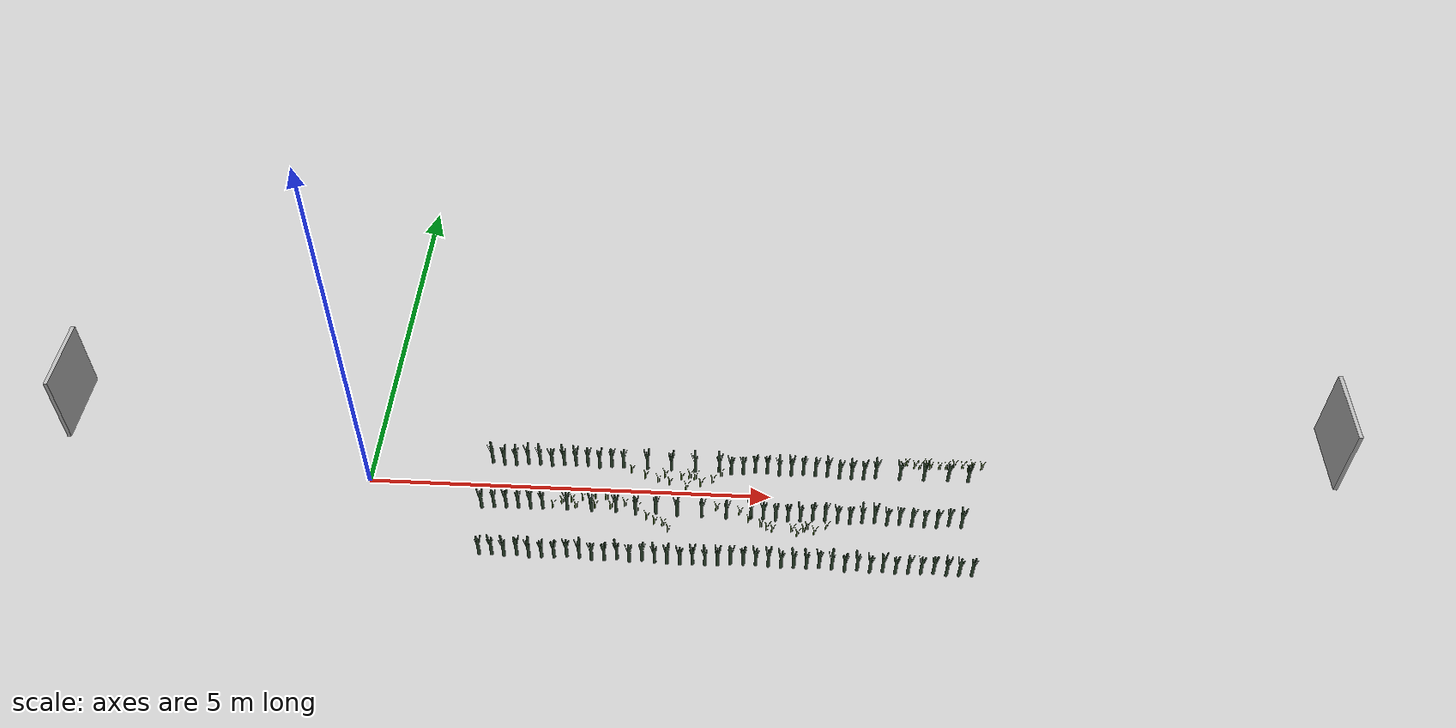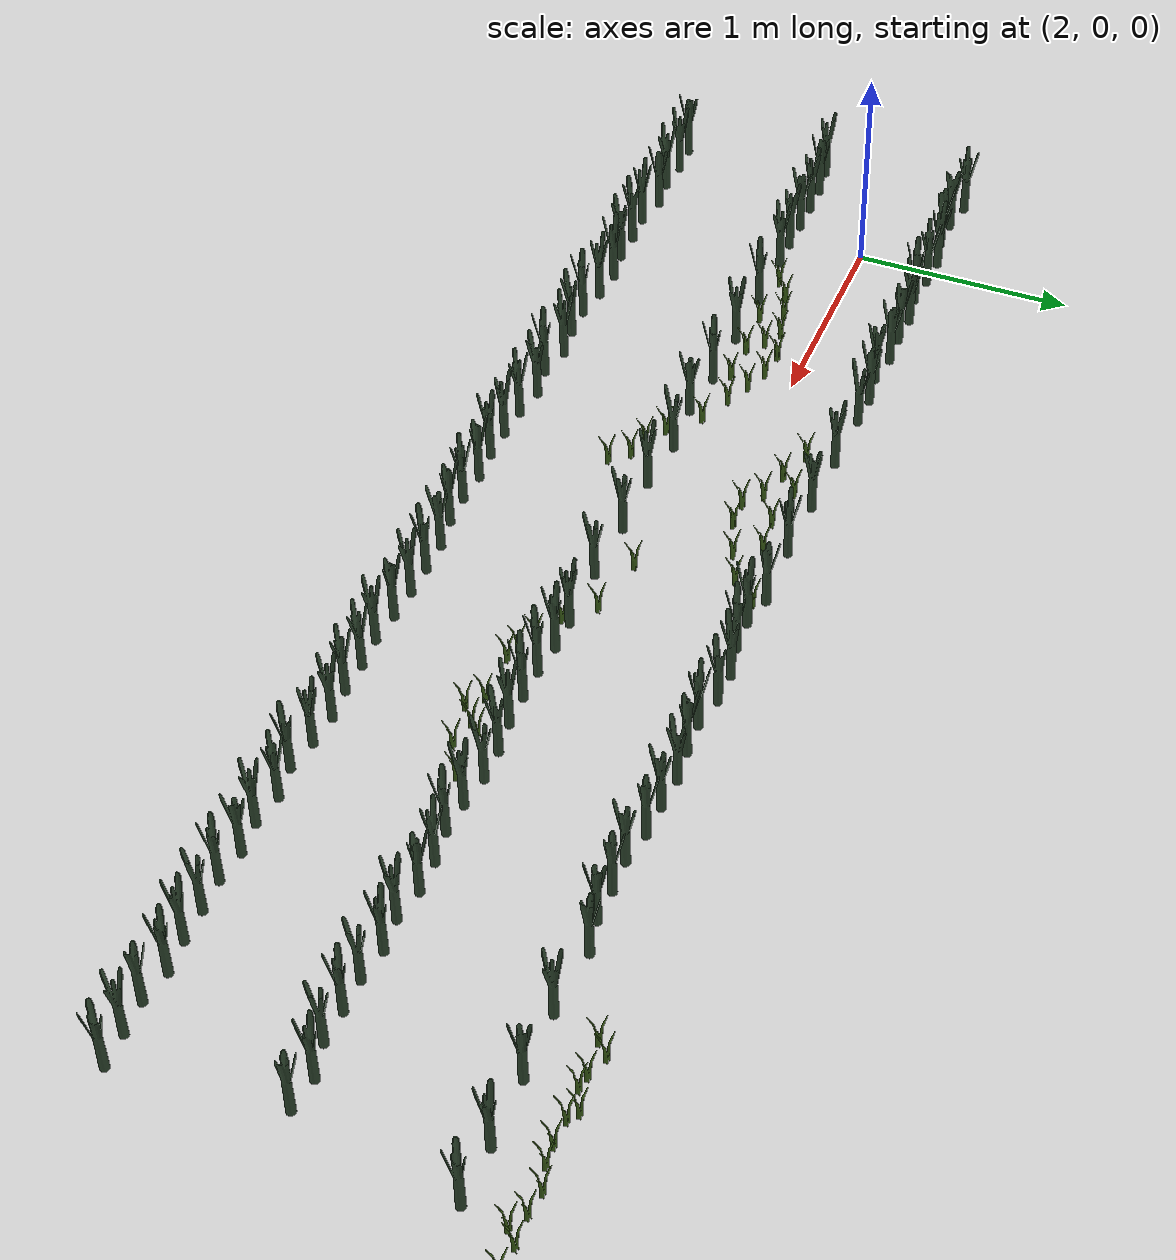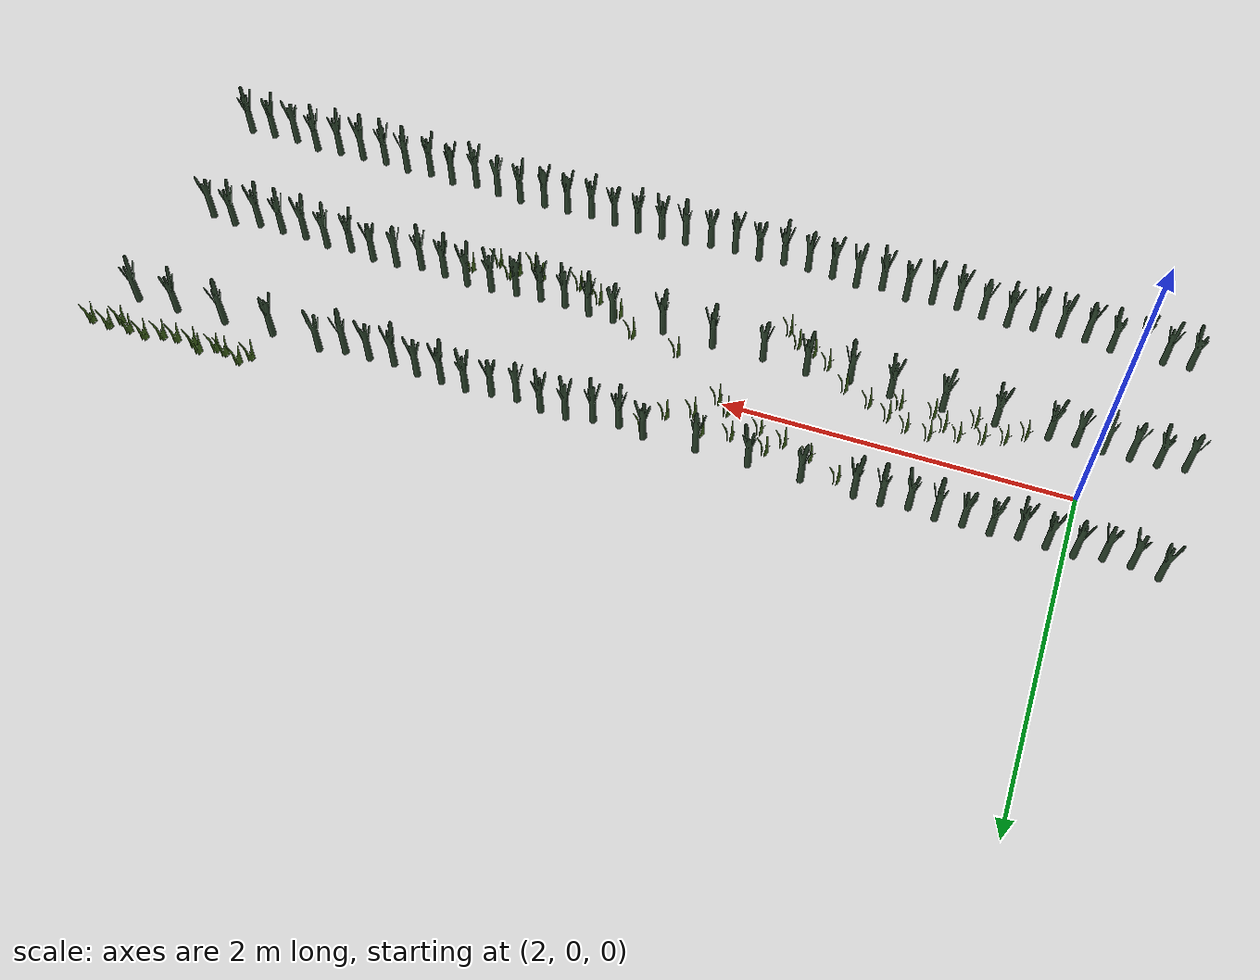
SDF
<sdf version="1.6">
 <world name="default">
  <light name="sun" type="directional">
   <pose>0 0 10 0 -0 0</pose>
   <diffuse>0.5 0.5 0.5 1</diffuse>
   <specular>0.1 0.1 0.1 1</specular>
   <attenuation>
    <range>1000</range>
    <constant>0.9</constant>
    <linear>0.01</linear>
    <quadratic>0.001</quadratic>
   </attenuation>
   <direction>0.9 0.5 -1</direction>
  </light>
  <scene><background>130 200 255 1</background><ambient>130 140 140 1</ambient></scene>
  <include><uri>model://Sign</uri><pose>12 1 0 0 0 0</pose><static>1</static></include>
  <include><uri>model://Sign</uri><pose>-4 1 0 0 0 0</pose><static>1</static></include>
  <include><uri>model://dirt_plane</uri></include>
  <include><uri>model://Leek</uri><pose>1.500000 0.356487 0.15 0 0 58.381075</pose><static>0</static></include>
  <include>
   <uri>model://Leek</uri>
   <pose>1.650000 0.331085 0.15 0 0 -170.232769</pose>
   <static>0</static>
  </include>
  <include>
   <uri>model://Leek</uri>
   <pose>1.800000 0.330449 0.15 0 0 -175.954975</pose>
   <static>0</static>
  </include>
  <include><uri>model://Leek</uri><pose>1.950000 0.361331 0.15 0 0 101.978230</pose><static>0</static></include>
  <include><uri>model://Leek</uri><pose>2.100000 0.355098 0.15 0 0 45.882748</pose><static>0</static></include>
  <include><uri>model://Leek</uri><pose>2.250000 0.341306 0.15 0 0 -78.244491</pose><static>0</static></include>
  <include><uri>model://Leek</uri><pose>2.400000 0.364908 0.15 0 0 134.169469</pose><static>0</static></include>
  <include><uri>model://Leek</uri><pose>2.550000 0.360538 0.15 0 0 94.839642</pose><static>0</static></include>
  <include><uri>model://Leek</uri><pose>2.700000 0.366590 0.15 0 0 149.311624</pose><static>0</static></include>
  <include><uri>model://Leek</uri><pose>2.850000 0.345030 0.15 0 0 -44.730675</pose><static>0</static></include>
  <include><uri>model://Leek</uri><pose>3.000000 0.367994 0.15 0 0 161.948821</pose><static>0</static></include>
  <include><uri>model://Leek</uri><pose>3.150000 0.364446 0.15 0 0 130.013011</pose><static>0</static></include>
  <include><uri>model://Leek</uri><pose>3.450000 0.357100 0.15 0 0 63.903562</pose><static>0</static></include>
  <include><uri>model://Leek</uri><pose>3.750000 0.353416 0.15 0 0 30.746336</pose><static>0</static></include>
  <include><uri>model://Leek</uri><pose>4.050000 0.350193 0.15 0 0 1.739384</pose><static>0</static></include>
  <include><uri>model://Leek</uri><pose>4.350000 0.361182 0.15 0 0 100.639042</pose><static>0</static></include>
  <include>
   <uri>model://Leek</uri>
   <pose>4.500000 0.330800 0.15 0 0 -172.797678</pose>
   <static>0</static>
  </include>
  <include><uri>model://Leek</uri><pose>4.650000 0.339921 0.15 0 0 -90.708750</pose><static>0</static></include>
  <include><uri>model://Leek</uri><pose>4.800000 0.369977 0.15 0 0 179.789312</pose><static>0</static></include>
  <include><uri>model://Leek</uri><pose>4.950000 0.369969 0.15 0 0 179.720191</pose><static>0</static></include>
  <include><uri>model://Leek</uri><pose>5.100000 0.342505 0.15 0 0 -67.453757</pose><static>0</static></include>
  <include><uri>model://Leek</uri><pose>5.250000 0.351462 0.15 0 0 13.157622</pose><static>0</static></include>
  <include><uri>model://Leek</uri><pose>5.400000 0.369306 0.15 0 0 173.753373</pose><static>0</static></include>
  <include><uri>model://Leek</uri><pose>5.550000 0.358898 0.15 0 0 80.086230</pose><static>0</static></include>
  <include><uri>model://Leek</uri><pose>5.700000 0.356306 0.15 0 0 56.752922</pose><static>0</static></include>
  <include>
   <uri>model://Leek</uri>
   <pose>5.850000 0.331676 0.15 0 0 -164.917664</pose>
   <static>0</static>
  </include>
  <include>
   <uri>model://Leek</uri>
   <pose>6.000000 0.338149 0.15 0 0 -106.659174</pose>
   <static>0</static>
  </include>
  <include>
   <uri>model://Leek</uri>
   <pose>6.150000 0.336624 0.15 0 0 -120.383989</pose>
   <static>0</static>
  </include>
  <include><uri>model://Leek</uri><pose>6.300000 0.368148 0.15 0 0 163.331344</pose><static>0</static></include>
  <include><uri>model://Leek</uri><pose>6.600000 0.352385 0.15 0 0 21.463071</pose><static>0</static></include>
  <include><uri>model://Leek</uri><pose>6.900000 0.361062 0.15 0 0 99.558963</pose><static>0</static></include>
  <include><uri>model://Leek</uri><pose>7.200000 0.367115 0.15 0 0 154.037504</pose><static>0</static></include>
  <include><uri>model://Leek</uri><pose>7.450000 0.365057 0.15 0 0 135.515272</pose><static>0</static></include>
  <include>
   <uri>model://Leek</uri>
   <pose>1.464708 -0.361755 0.15 0 0 -105.794166</pose>
   <static>0</static>
  </include>
  <include><uri>model://Leek</uri><pose>1.614708 -0.342448 0.15 0 0 67.969259</pose><static>0</static></include>
  <include>
   <uri>model://Leek</uri>
   <pose>1.764708 -0.338011 0.15 0 0 107.897523</pose>
   <static>0</static>
  </include>
  <include>
   <uri>model://Leek</uri>
   <pose>1.914708 -0.336906 0.15 0 0 117.849534</pose>
   <static>0</static>
  </include>
  <include>
   <uri>model://Leek</uri>
   <pose>2.064708 -0.338728 0.15 0 0 101.444583</pose>
   <static>0</static>
  </include>
  <include>
   <uri>model://Leek</uri>
   <pose>2.214708 -0.335090 0.15 0 0 134.186515</pose>
   <static>0</static>
  </include>
  <include>
   <uri>model://Leek</uri>
   <pose>2.514708 -0.331459 0.15 0 0 166.870559</pose>
   <static>0</static>
  </include>
  <include>
   <uri>model://Leek</uri>
   <pose>2.814708 -0.335743 0.15 0 0 128.314752</pose>
   <static>0</static>
  </include>
  <include>
   <uri>model://Leek</uri>
   <pose>3.114708 -0.335651 0.15 0 0 129.138421</pose>
   <static>0</static>
  </include>
  <include>
   <uri>model://Leek</uri>
   <pose>3.354708 -0.357126 0.15 0 0 -64.137073</pose>
   <static>0</static>
  </include>
  <include>
   <uri>model://Leek</uri>
   <pose>3.604708 -0.338334 0.15 0 0 104.991136</pose>
   <static>0</static>
  </include>
  <include>
   <uri>model://Leek</uri>
   <pose>3.864708 -0.358244 0.15 0 0 -74.196398</pose>
   <static>0</static>
  </include>
  <include>
   <uri>model://Leek</uri>
   <pose>4.164708 -0.354368 0.15 0 0 -39.313321</pose>
   <static>0</static>
  </include>
  <include>
   <uri>model://Leek</uri>
   <pose>4.464708 -0.362054 0.15 0 0 -108.487485</pose>
   <static>0</static>
  </include>
  <include><uri>model://Leek</uri><pose>4.764708 -0.350559 0.15 0 0 -5.034287</pose><static>0</static></include>
  <include><uri>model://Leek</uri><pose>4.914708 -0.350343 0.15 0 0 -3.085072</pose><static>0</static></include>
  <include>
   <uri>model://Leek</uri>
   <pose>5.064708 -0.364951 0.15 0 0 -134.561858</pose>
   <static>0</static>
  </include>
  <include>
   <uri>model://Leek</uri>
   <pose>5.214708 -0.364959 0.15 0 0 -134.634936</pose>
   <static>0</static>
  </include>
  <include>
   <uri>model://Leek</uri>
   <pose>5.364708 -0.360201 0.15 0 0 -91.805351</pose>
   <static>0</static>
  </include>
  <include><uri>model://Leek</uri><pose>5.514708 -0.341174 0.15 0 0 79.432156</pose><static>0</static></include>
  <include>
   <uri>model://Leek</uri>
   <pose>5.664708 -0.336226 0.15 0 0 123.968103</pose>
   <static>0</static>
  </include>
  <include>
   <uri>model://Leek</uri>
   <pose>5.814708 -0.356649 0.15 0 0 -59.840965</pose>
   <static>0</static>
  </include>
  <include>
   <uri>model://Leek</uri>
   <pose>5.964708 -0.364271 0.15 0 0 -128.436717</pose>
   <static>0</static>
  </include>
  <include><uri>model://Leek</uri><pose>6.114708 -0.341434 0.15 0 0 77.093404</pose><static>0</static></include>
  <include>
   <uri>model://Leek</uri>
   <pose>6.264708 -0.336670 0.15 0 0 119.974159</pose>
   <static>0</static>
  </include>
  <include>
   <uri>model://Leek</uri>
   <pose>6.414708 -0.360846 0.15 0 0 -97.617609</pose>
   <static>0</static>
  </include>
  <include><uri>model://Leek</uri><pose>6.564708 -0.344050 0.15 0 0 53.551214</pose><static>0</static></include>
  <include>
   <uri>model://Leek</uri>
   <pose>6.714708 -0.364845 0.15 0 0 -133.608344</pose>
   <static>0</static>
  </include>
  <include>
   <uri>model://Leek</uri>
   <pose>6.864708 -0.363577 0.15 0 0 -122.189004</pose>
   <static>0</static>
  </include>
  <include>
   <uri>model://Leek</uri>
   <pose>7.014708 -0.367629 0.15 0 0 -158.662901</pose>
   <static>0</static>
  </include>
  <include>
   <uri>model://Leek</uri>
   <pose>7.164708 -0.330086 0.15 0 0 179.229939</pose>
   <static>0</static>
  </include>
  <include><uri>model://Leek</uri><pose>7.314708 -0.348571 0.15 0 0 12.864246</pose><static>0</static></include>
  <include>
   <uri>model://Leek</uri>
   <pose>1.538519 -1.052912 0.15 0 0 -26.210635</pose>
   <static>0</static>
  </include>
  <include><uri>model://Leek</uri><pose>1.688519 -1.043433 0.15 0 0 59.103377</pose><static>0</static></include>
  <include>
   <uri>model://Leek</uri>
   <pose>1.838519 -1.056035 0.15 0 0 -54.318618</pose>
   <static>0</static>
  </include>
  <include>
   <uri>model://Leek</uri>
   <pose>1.988519 -1.036158 0.15 0 0 124.574641</pose>
   <static>0</static>
  </include>
  <include>
   <uri>model://Leek</uri>
   <pose>2.138519 -1.063094 0.15 0 0 -117.845447</pose>
   <static>0</static>
  </include>
  <include>
   <uri>model://Leek</uri>
   <pose>2.288519 -1.053751 0.15 0 0 -33.758858</pose>
   <static>0</static>
  </include>
  <include>
   <uri>model://Leek</uri>
   <pose>2.438519 -1.053030 0.15 0 0 -27.265970</pose>
   <static>0</static>
  </include>
  <include>
   <uri>model://Leek</uri>
   <pose>2.588519 -1.030098 0.15 0 0 179.116443</pose>
   <static>0</static>
  </include>
  <include><uri>model://Leek</uri><pose>2.738519 -1.040767 0.15 0 0 83.100727</pose><static>0</static></include>
  <include>
   <uri>model://Leek</uri>
   <pose>2.888519 -1.062880 0.15 0 0 -115.923976</pose>
   <static>0</static>
  </include>
  <include>
   <uri>model://Leek</uri>
   <pose>3.038519 -1.057227 0.15 0 0 -65.044453</pose>
   <static>0</static>
  </include>
  <include>
   <uri>model://Leek</uri>
   <pose>3.188519 -1.033000 0.15 0 0 153.001534</pose>
   <static>0</static>
  </include>
  <include>
   <uri>model://Leek</uri>
   <pose>3.338519 -1.064271 0.15 0 0 -128.442490</pose>
   <static>0</static>
  </include>
  <include>
   <uri>model://Leek</uri>
   <pose>3.488519 -1.036967 0.15 0 0 117.298975</pose>
   <static>0</static>
  </include>
  <include>
   <uri>model://Leek</uri>
   <pose>3.638519 -1.059535 0.15 0 0 -85.816804</pose>
   <static>0</static>
  </include>
  <include>
   <uri>model://Leek</uri>
   <pose>3.788519 -1.068027 0.15 0 0 -162.246015</pose>
   <static>0</static>
  </include>
  <include>
   <uri>model://Leek</uri>
   <pose>3.938519 -1.069210 0.15 0 0 -172.893490</pose>
   <static>0</static>
  </include>
  <include>
   <uri>model://Leek</uri>
   <pose>4.088519 -1.056906 0.15 0 0 -62.154624</pose>
   <static>0</static>
  </include>
  <include>
   <uri>model://Leek</uri>
   <pose>4.238519 -1.065837 0.15 0 0 -142.532756</pose>
   <static>0</static>
  </include>
  <include>
   <uri>model://Leek</uri>
   <pose>4.388519 -1.059698 0.15 0 0 -87.277805</pose>
   <static>0</static>
  </include>
  <include>
   <uri>model://Leek</uri>
   <pose>4.538519 -1.034791 0.15 0 0 136.883488</pose>
   <static>0</static>
  </include>
  <include>
   <uri>model://Leek</uri>
   <pose>4.688519 -1.034206 0.15 0 0 142.145905</pose>
   <static>0</static>
  </include>
  <include>
   <uri>model://Leek</uri>
   <pose>4.838519 -1.034339 0.15 0 0 140.947379</pose>
   <static>0</static>
  </include>
  <include><uri>model://Leek</uri><pose>4.988519 -1.042231 0.15 0 0 69.924537</pose><static>0</static></include>
  <include>
   <uri>model://Leek</uri>
   <pose>5.138519 -1.054597 0.15 0 0 -41.373121</pose>
   <static>0</static>
  </include>
  <include><uri>model://Leek</uri><pose>5.288519 -1.044859 0.15 0 0 46.266284</pose><static>0</static></include>
  <include><uri>model://Leek</uri><pose>5.438519 -1.046959 0.15 0 0 27.370597</pose><static>0</static></include>
  <include>
   <uri>model://Leek</uri>
   <pose>5.588519 -1.031546 0.15 0 0 166.082630</pose>
   <static>0</static>
  </include>
  <include><uri>model://Leek</uri><pose>5.738519 -1.043557 0.15 0 0 57.987514</pose><static>0</static></include>
  <include>
   <uri>model://Leek</uri>
   <pose>5.888519 -1.067015 0.15 0 0 -153.138912</pose>
   <static>0</static>
  </include>
  <include><uri>model://Leek</uri><pose>6.038519 -1.042774 0.15 0 0 65.034256</pose><static>0</static></include>
  <include>
   <uri>model://Leek</uri>
   <pose>6.188519 -1.064368 0.15 0 0 -129.315906</pose>
   <static>0</static>
  </include>
  <include><uri>model://Leek</uri><pose>6.338519 -1.048033 0.15 0 0 17.702387</pose><static>0</static></include>
  <include>
   <uri>model://Leek</uri>
   <pose>6.488519 -1.064265 0.15 0 0 -128.387905</pose>
   <static>0</static>
  </include>
  <include>
   <uri>model://Leek</uri>
   <pose>6.638519 -1.056459 0.15 0 0 -58.133080</pose>
   <static>0</static>
  </include>
  <include>
   <uri>model://Leek</uri>
   <pose>6.788519 -1.053131 0.15 0 0 -28.181106</pose>
   <static>0</static>
  </include>
  <include>
   <uri>model://Leek</uri>
   <pose>6.938519 -1.038445 0.15 0 0 103.997481</pose>
   <static>0</static>
  </include>
  <include>
   <uri>model://Leek</uri>
   <pose>7.088519 -1.062534 0.15 0 0 -112.804156</pose>
   <static>0</static>
  </include>
  <include>
   <uri>model://Leek</uri>
   <pose>7.238519 -1.055970 0.15 0 0 -53.730746</pose>
   <static>0</static>
  </include>
  <include><uri>model://Leek</uri><pose>7.388519 -1.050970 0.15 0 0 -8.728647</pose><static>0</static></include>
  <include><uri>model://Grass</uri><pose>2.34029 -0.291745 0 0 -0 0</pose><static>1</static></include>
  <include><uri>model://Grass</uri><pose>2.4448 -0.226501 0 0 -0 0</pose><static>1</static></include>
  <include><uri>model://Grass</uri><pose>2.56409 -0.190453 0 0 -0 0</pose><static>1</static></include>
  <include><uri>model://Grass</uri><pose>2.69556 -0.160797 0 0 -0 0</pose><static>1</static></include>
  <include><uri>model://Grass</uri><pose>3.05031 -0.27232 0 0 -0 0</pose><static>1</static></include>
  <include><uri>model://Grass</uri><pose>3.26434 0.309193 0 0 -0 0</pose><static>1</static></include>
  <include><uri>model://Grass</uri><pose>3.44294 0.224645 0 0 -0 0</pose><static>1</static></include>
  <include><uri>model://Grass</uri><pose>4.74557 -0.391794 0 0 -0 0</pose><static>1</static></include>
  <include><uri>model://Grass</uri><pose>5.03233 -0.515364 0 0 -0 0</pose><static>1</static></include>
  <include><uri>model://Grass</uri><pose>4.96565 -0.493128 0 0 -0 0</pose><static>1</static></include>
  <include><uri>model://Grass</uri><pose>4.34545 -0.229694 0 0 -0 0</pose><static>1</static></include>
  <include><uri>model://Grass</uri><pose>4.63102 -0.277476 0 0 -0 0</pose><static>1</static></include>
  <include><uri>model://Grass</uri><pose>7.64122 0.590489 0 0 -0 0</pose><static>1</static></include>
  <include><uri>model://Grass</uri><pose>7.40155 0.592621 0 0 -0 0</pose><static>1</static></include>
  <include><uri>model://Grass</uri><pose>7.1964 0.573075 0 0 -0 0</pose><static>1</static></include>
  <include><uri>model://Grass</uri><pose>7 0.567642 0 0 -0 0</pose><static>1</static></include>
  <include><uri>model://Grass</uri><pose>6.80373 0.568265 0 0 -0 0</pose><static>1</static></include>
  <include><uri>model://Grass</uri><pose>6.65038 0.548206 0 0 -0 0</pose><static>1</static></include>
  <include><uri>model://Grass</uri><pose>6.86338 0.557376 0 0 -0 0</pose><static>1</static></include>
  <include><uri>model://Grass</uri><pose>5.33412 -0.567918 0 0 -0 0</pose><static>1</static></include>
  <include><uri>model://Grass</uri><pose>6.9559 0.599059 0 0 -0 0</pose><static>1</static></include>
  <include><uri>model://Grass</uri><pose>7.11013 0.565026 0 0 -0 0</pose><static>1</static></include>
  <include><uri>model://Grass</uri><pose>7.29787 0.603918 0 0 -0 0</pose><static>1</static></include>
  <include><uri>model://Grass</uri><pose>7.47161 0.550224 0 0 -0 0</pose><static>1</static></include>
  <include><uri>model://Grass</uri><pose>7.52756 0.599362 0 0 -0 0</pose><static>1</static></include>
  <include><uri>model://Grass</uri><pose>6.70457 0.598916 0 0 -0 0</pose><static>1</static></include>
  <include><uri>model://Grass</uri><pose>5.53959 -0.526766 0 0 -0 0</pose><static>1</static></include>
  <include><uri>model://Grass</uri><pose>5.68421 -0.447125 0 0 -0 0</pose><static>1</static></include>
  <include><uri>model://Grass</uri><pose>5.41154 -0.504498 0 0 -0 0</pose><static>1</static></include>
  <include><uri>model://Grass</uri><pose>5.26645 -0.508658 0 0 -0 0</pose><static>1</static></include>
  <include><uri>model://Grass</uri><pose>5.26645 -0.508658 0 0 -0 0</pose><static>1</static></include>
  <include><uri>model://Grass</uri><pose>5.45141 -0.46103 0 0 -0 0</pose><static>1</static></include>
  <include><uri>model://Grass</uri><pose>4.88901 -0.449994 0 0 -0 0</pose><static>1</static></include>
  <include><uri>model://Grass</uri><pose>3.60262 0.172685 0 0 -0 0</pose><static>1</static></include>
  <include><uri>model://Grass</uri><pose>3.7492 0.134706 0 0 -0 0</pose><static>1</static></include>
  <include><uri>model://Grass</uri><pose>3.95819 0.072067 0 0 -0 0</pose><static>1</static></include>
  <include><uri>model://Grass</uri><pose>4.13436 0.134191 0 0 -0 0</pose><static>1</static></include>
  <include><uri>model://Grass</uri><pose>4.27786 0.19599 0 0 -0 0</pose><static>1</static></include>
  <include><uri>model://Grass</uri><pose>4.37709 0.310747 0 0 -0 0</pose><static>1</static></include>
  <include><uri>model://Grass</uri><pose>4 0.1228 0.168952 0 -0 0</pose><static>1</static></include>
  <include><uri>model://Grass</uri><pose>2.85285 -0.120544 0 0 -0 0</pose><static>1</static></include>
  <include><uri>model://Grass</uri><pose>4.05725 0.241411 0 0 -0 0</pose><static>1</static></include>
  <include><uri>model://Grass</uri><pose>3.6865 0.251185 0 0 -0 0</pose><static>1</static></include>
  <include><uri>model://Grass</uri><pose>3.8936 0.223629 0 0 -0 0</pose><static>1</static></include>
  <include><uri>model://Grass</uri><pose>2.98511 -0.13313 0 0 -0 0</pose><static>1</static></include>
  <include><uri>model://Grass</uri><pose>3.09742 -0.174831 0 0 -0 0</pose><static>1</static></include>
  <include><uri>model://Grass</uri><pose>3.2186 -0.227124 0 0 -0 00</pose><static>1</static></include>
  <include><uri>model://Grass</uri><pose>3.37189 -0.291335 0 0 -0 0</pose><static>1</static></include>
  <include><uri>model://Grass</uri><pose>3.50189 -0.41335 0 0 -0 0</pose><static>1</static></include>
  <include><uri>model://Grass</uri><pose>3.60189 -0.471335 0 0 -0 0</pose><static>1</static></include>
  <include><uri>model://Grass</uri><pose>3.70189 -0.501335 0 0 -0 0</pose><static>1</static></include>
  <include><uri>model://Grass</uri><pose>3.77189 -0.581335 0 0 -0 0</pose><static>1</static></include>
  <include><uri>model://Grass</uri><pose>2.85756 -0.270177 0 0 -0 0</pose><static>1</static></include>
  <include><uri>model://Grass</uri><pose>2.62087 -0.288178 0 0 -0 0</pose><static>1</static></include>
  <include><uri>model://Grass</uri><pose>2.78504 -0.204906 0 0 -0 0</pose><static>1</static></include>
 </world>
</sdf>

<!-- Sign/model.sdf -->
<sdf version='1.6'>
  <model name='Sign'>
    <link name='link'>
      <pose frame=''>0 0 0 0 -0 0</pose>
      <inertial>
        <mass>1</mass>
        <inertia>
          <ixx>0.166667</ixx>
          <ixy>0</ixy>
          <ixz>0</ixz>
          <iyy>0.166667</iyy>
          <iyz>0</iyz>
          <izz>0.166667</izz>
        </inertia>
        <pose frame=''>0 0 0 0 -0 0</pose>
      </inertial>
      <self_collide>0</self_collide>
      <kinematic>0</kinematic>
      <gravity>1</gravity>
      <visual name='visual'>
        <geometry>
          <box>
            <size>1 0.05 1</size>
          </box>
        </geometry>
        <material>
          <script>
            <uri>model://ground_plane/materials/scripts/my_ground_plane.material</uri>
            <uri>model://ground_plane/materials/textures</uri>
            <name>my_ground_plane/NaioLogo</name>
          </script>
        </material>
        <pose frame=''>0 0 0.5 0 -0 1.57</pose>
        <cast_shadows>1</cast_shadows>
        <transparency>0</transparency>
      </visual>
    </link>
    <static>1</static>
    <allow_auto_disable>1</allow_auto_disable>
  </model>
</sdf>

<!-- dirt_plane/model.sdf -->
<sdf version="1.4">
<model name="dirt_plane">
  <static>true</static>
    <link name="link">
      <collision name="collision">
        <geometry>
          <plane>
            <normal>0 0 1</normal>
            <size>100 100</size>
          </plane>
        </geometry>
        <surface>
          <friction>
            <ode>
              <mu>100</mu>
              <mu2>50</mu2>
            </ode>
          </friction>
        </surface>
      </collision>
      <visual name="visual">
        <cast_shadows>false</cast_shadows>
        <geometry>
          <plane>
            <normal>0 0 1</normal>
            <size>100 100</size>
          </plane>
        </geometry>
        <material>
          <script>
            <uri>model://ground_plane/materials/scripts/my_ground_plane.material</uri>
            <uri>model://ground_plane/materials/textures</uri>
            <name>my_ground_plane/Dirt</name>
          </script>
        </material>
      </visual>
    </link>
  </model>
</sdf>

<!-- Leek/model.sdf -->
<sdf version='1.6'>
  <model name='Leek'>
    <link name='link'>
      <pose frame=''>0 0 0 0 -0 0</pose>
      <inertial>
        <mass>1</mass>
        <inertia>
          <ixx>0.145833</ixx>
          <ixy>0</ixy>
          <ixz>0</ixz>
          <iyy>0.145833</iyy>
          <iyz>0</iyz>
          <izz>0.125</izz>
        </inertia>
        <pose frame=''>0 0 0 0 -0 0</pose>
      </inertial>
      <self_collide>0</self_collide>
      <kinematic>0</kinematic>
      <gravity>1</gravity>
      <visual name='visual'>
        <geometry>
          <mesh>
            <uri>model://Leek/Poireau.dae</uri>
            <scale>1 1 1</scale>
          </mesh>
        </geometry>
        <material>
          <script>
            <name>Gazebo/Grey</name>
            <uri>file://media/materials/scripts/gazebo.material</uri>
          </script>
          <ambient>0.3 0.7 0.4 0</ambient>
          <diffuse>0.2 0.3 0.2 0</diffuse>
          <specular>0 0 0 1</specular>
          <emissive>0 0 0 1</emissive>
          <shader type='vertex'>
            <normal_map>__default__</normal_map>
          </shader>
        </material>
        <pose frame=''>0 0 -0.08 0 -0 0</pose>
        <cast_shadows>1</cast_shadows>
        <transparency>0</transparency>
      </visual>
      <collision name='collision'>
        <laser_retro>0</laser_retro>
        <max_contacts>10</max_contacts>
        <pose frame=''>0 0 0 0 -0 0</pose>
        <geometry>
          <cylinder>
            <radius>0.02</radius>
            <length>0.25</length>
          </cylinder>
        </geometry>
        <surface>
          <friction>
            <ode>
              <mu>1</mu>
              <mu2>1</mu2>
              <fdir1>0 0 0</fdir1>
              <slip1>0</slip1>
              <slip2>0</slip2>
            </ode>
            <torsional>
              <coefficient>1</coefficient>
              <patch_radius>0</patch_radius>
              <surface_radius>0</surface_radius>
              <use_patch_radius>1</use_patch_radius>
              <ode>
                <slip>0</slip>
              </ode>
            </torsional>
          </friction>
          <bounce>
            <restitution_coefficient>0</restitution_coefficient>
            <threshold>1e+06</threshold>
          </bounce>
          <contact>
            <collide_without_contact>0</collide_without_contact>
            <collide_without_contact_bitmask>1</collide_without_contact_bitmask>
            <collide_bitmask>1</collide_bitmask>
            <ode>
              <soft_cfm>0</soft_cfm>
              <soft_erp>0.2</soft_erp>
              <kp>1e+13</kp>
              <kd>1</kd>
              <max_vel>0.01</max_vel>
              <min_depth>0</min_depth>
            </ode>
            <bullet>
              <split_impulse>1</split_impulse>
              <split_impulse_penetration_threshold>-0.01</split_impulse_penetration_threshold>
              <soft_cfm>0</soft_cfm>
              <soft_erp>0.2</soft_erp>
              <kp>1e+13</kp>
              <kd>1</kd>
            </bullet>
          </contact>
        </surface>
      </collision>
    </link>
    <static>0</static>
    <allow_auto_disable>1</allow_auto_disable>
  </model>
</sdf>

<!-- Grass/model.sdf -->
<sdf version='1.6'>
  <model name='Grass'>
    <link name='link'>
      <pose frame=''>0 0 0 0 -0 0</pose>
      <inertial>
        <mass>1</mass>
        <inertia>
          <ixx>0.145833</ixx>
          <ixy>0</ixy>
          <ixz>0</ixz>
          <iyy>0.145833</iyy>
          <iyz>0</iyz>
          <izz>0.125</izz>
        </inertia>
        <pose frame=''>0 0 0 0 -0 0</pose>
      </inertial>
      <self_collide>0</self_collide>
      <kinematic>0</kinematic>
      <gravity>1</gravity>
      <visual name='visual'>
        <geometry>
          <mesh>
            <uri>model://Grass/Herbe.dae</uri>
            <scale>1 1 1</scale>
          </mesh>
        </geometry>
        <material>
          <script>
            <name>Gazebo/Grey</name>
            <uri>file://media/materials/scripts/gazebo.material</uri>
          </script>
          <ambient>0.9 1 0.5 0</ambient>
          <diffuse>0.25 0.4 0.1 0</diffuse>
          <specular>0 0 0 1</specular>
          <emissive>0 0 0 1</emissive>
          <shader type='vertex'>
            <normal_map>__default__</normal_map>
          </shader>
        </material>
        <pose frame=''>0 0 0 0 -0 0</pose>
        <cast_shadows>1</cast_shadows>
        <transparency>0</transparency>
      </visual>
    </link>
    <static>1</static>
    <allow_auto_disable>1</allow_auto_disable>
  </model>
</sdf>
